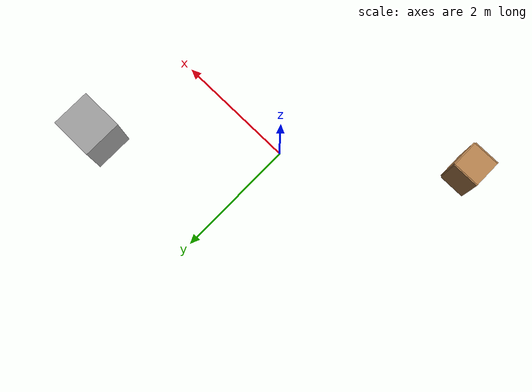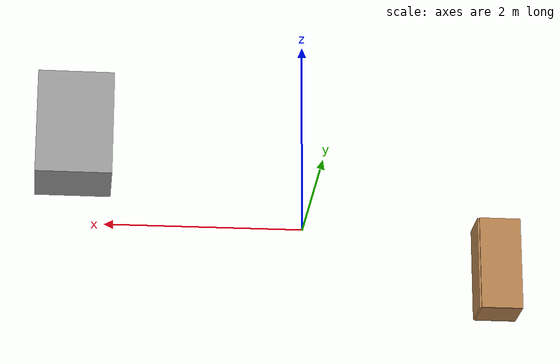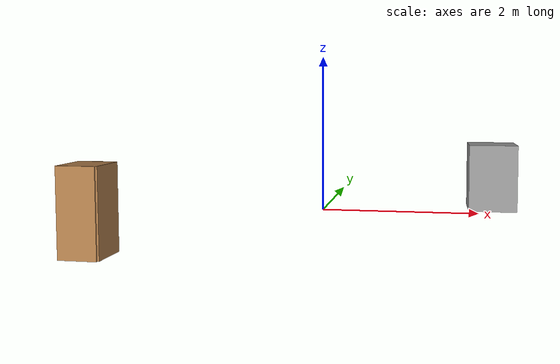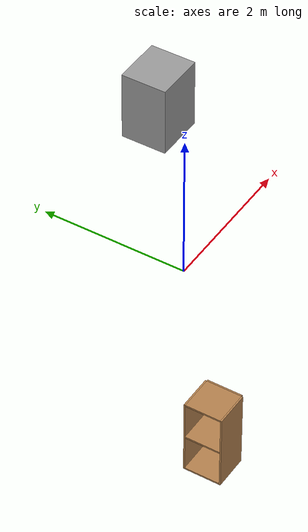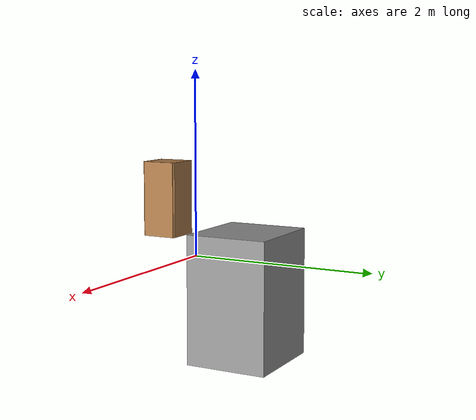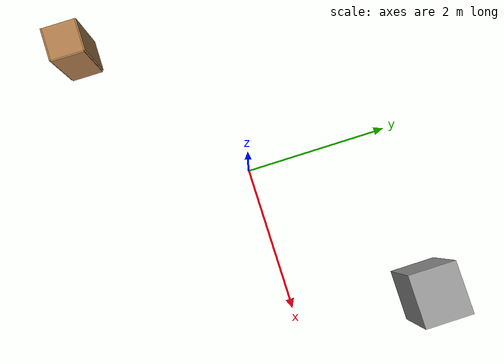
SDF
<?xml version='1.0'?>
<sdf version='1.6'>
  <model name='Untitled'>
    <link name='link_0'>
      <pose frame=''>2.32316 1.82711 0.25 0 -0 0</pose>
      <inertial>
        <mass>0.460055</mass>
        <inertia>
          <ixx>0.0544455</ixx>
          <ixy>0</ixy>
          <ixz>0</ixz>
          <iyy>0.057651</iyy>
          <iyz>0</iyz>
          <izz>0.0354207</izz>
        </inertia>
        <pose frame=''>0 0 0 0 -0 0</pose>
      </inertial>
      <visual name='visual'>
        <pose frame=''>0 0 0 0 -0 0</pose>
        <geometry>
          <box>
            <size>0.70976 0.648188 1</size>
          </box>
        </geometry>
        <material>
          <lighting>1</lighting>
          <script>
            <uri>file://media/materials/scripts/gazebo.material</uri>
            <name>Gazebo/Grey</name>
          </script>
          <shader type='pixel'/>
          <ambient>0.3 0.3 0.3 1</ambient>
          <diffuse>0.7 0.7 0.7 1</diffuse>
          <specular>0.01 0.01 0.01 1</specular>
          <emissive>0 0 0 1</emissive>
        </material>
        <transparency>0</transparency>
        <cast_shadows>1</cast_shadows>
      </visual>
      <collision name='collision'>
        <laser_retro>0</laser_retro>
        <max_contacts>10</max_contacts>
        <pose frame=''>0 0 0 0 -0 0</pose>
        <geometry>
          <box>
            <size>0.70976 0.648188 1</size>
          </box>
        </geometry>
        <surface>
          <friction>
            <ode>
              <mu>1</mu>
              <mu2>1</mu2>
              <fdir1>0 0 0</fdir1>
              <slip1>0</slip1>
              <slip2>0</slip2>
            </ode>
            <torsional>
              <coefficient>1</coefficient>
              <patch_radius>0</patch_radius>
              <surface_radius>0</surface_radius>
              <use_patch_radius>1</use_patch_radius>
              <ode>
                <slip>0</slip>
              </ode>
            </torsional>
          </friction>
          <bounce>
            <restitution_coefficient>0</restitution_coefficient>
            <threshold>1e+06</threshold>
          </bounce>
          <contact>
            <collide_without_contact>0</collide_without_contact>
            <collide_without_contact_bitmask>1</collide_without_contact_bitmask>
            <collide_bitmask>1</collide_bitmask>
            <ode>
              <soft_cfm>0</soft_cfm>
              <soft_erp>0.2</soft_erp>
              <kp>1e+13</kp>
              <kd>1</kd>
              <max_vel>0.01</max_vel>
              <min_depth>0</min_depth>
            </ode>
            <bullet>
              <split_impulse>1</split_impulse>
              <split_impulse_penetration_threshold>-0.01</split_impulse_penetration_threshold>
              <soft_cfm>0</soft_cfm>
              <soft_erp>0.2</soft_erp>
              <kp>1e+13</kp>
              <kd>1</kd>
            </bullet>
          </contact>
        </surface>
      </collision>
    </link>
    <model name='cabinet'>
      <static>1</static>
      <link name='cabinet_bottom_plate'>
        <inertial>
          <pose frame=''>0 0 -1 0 -0 0</pose>
          <inertia>
            <ixx>2.05</ixx>
            <ixy>0</ixy>
            <ixz>0</ixz>
            <iyy>2.05</iyy>
            <iyz>0</iyz>
            <izz>2.05</izz>
          </inertia>
          <mass>25</mass>
        </inertial>
        <collision name='cabinet_bottom_plate_geom'>
          <pose frame=''>0 0 0.01 0 -0 0</pose>
          <geometry>
            <box>
              <size>0.45 0.45 0.02</size>
            </box>
          </geometry>
        </collision>
        <visual name='cabinet_bottom_plate_geom_visual'>
          <pose frame=''>0 0 0.01 0 -0 0</pose>
          <geometry>
            <box>
              <size>0.45 0.45 0.02</size>
            </box>
          </geometry>
          <material>
            <script>
              <uri>file://media/materials/scripts/gazebo.material</uri>
              <name>Gazebo/Wood</name>
            </script>
          </material>
        </visual>
        <collision name='cabinet_bottom_plate_geom_cabinet_back_plate'>
          <pose frame=''>0.235 0 0.51 0 -0 0</pose>
          <geometry>
            <box>
              <size>0.02 0.45 1.02</size>
            </box>
          </geometry>
        </collision>
        <visual name='cabinet_bottom_plate_geom_cabinet_back_plate_visual'>
          <pose frame=''>0.235 0 0.51 0 -0 0</pose>
          <geometry>
            <box>
              <size>0.02 0.45 1.02</size>
            </box>
          </geometry>
          <material>
            <script>
              <uri>file://media/materials/scripts/gazebo.material</uri>
              <name>Gazebo/Wood</name>
            </script>
          </material>
        </visual>
        <collision name='cabinet_bottom_plate_geom_cabinet_left_plate'>
          <pose frame=''>0 0.235 0.51 0 -0 0</pose>
          <geometry>
            <box>
              <size>0.45 0.02 1.02</size>
            </box>
          </geometry>
        </collision>
        <visual name='cabinet_bottom_plate_geom_cabinet_left_plate_visual'>
          <pose frame=''>0 0.235 0.51 0 -0 0</pose>
          <geometry>
            <box>
              <size>0.45 0.02 1.02</size>
            </box>
          </geometry>
          <material>
            <script>
              <uri>file://media/materials/scripts/gazebo.material</uri>
              <name>Gazebo/Wood</name>
            </script>
          </material>
        </visual>
        <collision name='cabinet_bottom_plate_geom_cabinet_middle_plate'>
          <pose frame=''>0 0 0.51 0 -0 0</pose>
          <geometry>
            <box>
              <size>0.45 0.45 0.02</size>
            </box>
          </geometry>
        </collision>
        <visual name='cabinet_bottom_plate_geom_cabinet_middle_plate_visual'>
          <pose frame=''>0 0 0.51 0 -0 0</pose>
          <geometry>
            <box>
              <size>0.45 0.45 0.02</size>
            </box>
          </geometry>
          <material>
            <script>
              <uri>file://media/materials/scripts/gazebo.material</uri>
              <name>Gazebo/Wood</name>
            </script>
          </material>
        </visual>
        <collision name='cabinet_bottom_plate_geom_cabinet_right_plate'>
          <pose frame=''>0 -0.235 0.51 0 -0 0</pose>
          <geometry>
            <box>
              <size>0.45 0.02 1.02</size>
            </box>
          </geometry>
        </collision>
        <visual name='cabinet_bottom_plate_geom_cabinet_right_plate_visual'>
          <pose frame=''>0 -0.235 0.51 0 -0 0</pose>
          <geometry>
            <box>
              <size>0.45 0.02 1.02</size>
            </box>
          </geometry>
          <material>
            <script>
              <uri>file://media/materials/scripts/gazebo.material</uri>
              <name>Gazebo/Wood</name>
            </script>
          </material>
        </visual>
        <collision name='cabinet_bottom_plate_geom_cabinet_top_plate'>
          <pose frame=''>0 0 1.01 0 -0 0</pose>
          <geometry>
            <box>
              <size>0.45 0.45 0.02</size>
            </box>
          </geometry>
        </collision>
        <visual name='cabinet_bottom_plate_geom_cabinet_top_plate_visual'>
          <pose frame=''>0 0 1.01 0 -0 0</pose>
          <geometry>
            <box>
              <size>0.45 0.45 0.02</size>
            </box>
          </geometry>
          <material>
            <script>
              <uri>file://media/materials/scripts/gazebo.material</uri>
              <name>Gazebo/Wood</name>
            </script>
          </material>
        </visual>
      </link>
      <pose frame=''>-2.32316 -1.8271 -0.25 0 -0 0</pose>
    </model>
    <static>0</static>
    <allow_auto_disable>1</allow_auto_disable>
  </model>
</sdf>
